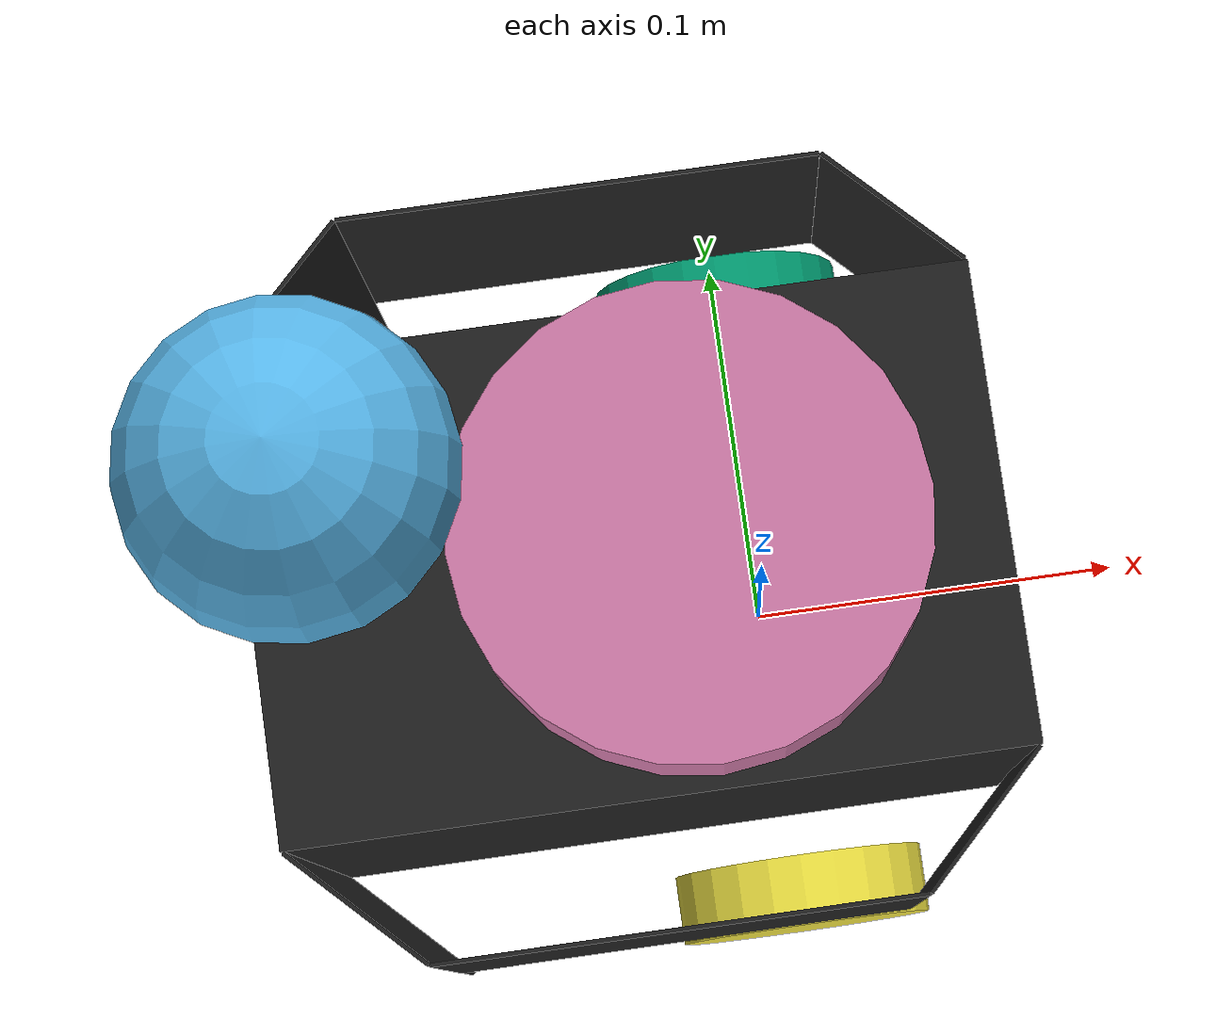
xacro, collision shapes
<?xml version="1.0" ?>
<robot name="turtlebot3_burger" xmlns:xacro="http://ros.org/wiki/xacro">

  <link name="base_footprint"/>

  <joint name="base_joint" type="fixed">
    <parent link="base_footprint"/>
    <child link="base_link"/>
    <origin xyz="0.0 0.0 0.010" rpy="0 0 0"/>
  </joint>

  <link name="base_link">
    <visual>
      <origin xyz="-0.032 0 0.00875" rpy="0 0 0"/>
      <geometry>
        <mesh filename="package://burger_war/models/burger_bot/burger_bot_cover.stl" scale="0.001 0.001 0.001"/>
      </geometry>
      <material name="light_black"/>
    </visual>

    <collision>
      <origin xyz="-0.032 0 0.07875" rpy="0 0 0"/>
      <geometry>
        <box size="0.178 0.116 0.13"/>
      </geometry>
    </collision>
    <collision>
      <origin xyz="-0.032 0.0885 0.10125" rpy="0 0 0"/>
      <geometry>
        <box size="0.116 0.001 0.085"/>
      </geometry>
    </collision>
    <collision>
      <origin xyz="-0.032 -0.0885 0.10125" rpy="0 0 0"/>
      <geometry>
        <box size="0.116 0.001 0.085"/>
      </geometry>
    </collision>
    <collision>
      <origin xyz="-0.10535 0.07335 0.07875" rpy="0 0 0.785398163"/>
      <geometry>
        <box size="0.04243 0.001 0.13"/>
      </geometry>
    </collision>
    <collision>
      <origin xyz="-0.10535 -0.07335 0.07875" rpy="0 0 -0.785398163"/>
      <geometry>
        <box size="0.04243 0.001 0.13"/>
      </geometry>
    </collision>
    <collision>
      <origin xyz="0.04138 0.07335 0.10125" rpy="0 0 -0.785398163"/>
      <geometry>
        <box size="0.04243 0.001 0.085"/>
      </geometry>
    </collision>
    <collision>
      <origin xyz="0.04138 -0.07335 0.10125" rpy="0 0 0.785398163"/>
      <geometry>
        <box size="0.04243 0.001 0.085"/>
      </geometry>
    </collision>

    <inertial>
      <origin xyz="-0.032 0 0.07" rpy="0 0 0"/>
      <mass value="2.6"/>
      <inertia ixx="6.65340e-03" ixy="0" ixz="0"
               iyy="6.65340e-03" iyz="0"
               izz="8.25240e-03" />

    </inertial>
  </link>

  <joint name="wheel_left_joint" type="continuous">
    <parent link="base_link"/>
    <child link="wheel_left_link"/>
    <origin xyz="0.0 0.08 0.023" rpy="-1.57 0 0"/>
    <axis xyz="0 0 1"/>
  </joint>

  <link name="wheel_left_link">
    <visual>
      <origin xyz="0 0 0" rpy="1.57 0 0"/>
      <geometry>
        <mesh filename="package://turtlebot3_description/meshes/wheels/left_tire.stl" scale="0.001 0.001 0.001"/>
      </geometry>
      <material name="dark"/>
    </visual>

    <collision>
      <origin xyz="0 0 0" rpy="0 0 0"/>
      <geometry>
        <cylinder length="0.018" radius="0.033"/>
      </geometry>
    </collision>

    <inertial>
      <origin xyz="0 0 0" />
      <mass value="2.8498940e-02" />
      <inertia ixx="1.1175580e-05" ixy="-4.2369783e-11" ixz="-5.9381719e-09"
               iyy="1.1192413e-05" iyz="-1.4400107e-11"
               izz="2.0712558e-05" />
      </inertial>
  </link>

  <joint name="wheel_right_joint" type="continuous">
    <parent link="base_link"/>
    <child link="wheel_right_link"/>
    <origin xyz="0.0 -0.080 0.023" rpy="-1.57 0 0"/>
    <axis xyz="0 0 1"/>
  </joint>

  <link name="wheel_right_link">
    <visual>
      <origin xyz="0 0 0" rpy="1.57 0 0"/>
      <geometry>
        <mesh filename="package://turtlebot3_description/meshes/wheels/right_tire.stl" scale="0.001 0.001 0.001"/>
      </geometry>
      <material name="dark"/>
    </visual>

    <collision>
      <origin xyz="0 0 0" rpy="0 0 0"/>
      <geometry>
        <cylinder length="0.018" radius="0.033"/>
      </geometry>
    </collision>

    <inertial>
      <origin xyz="0 0 0" />
      <mass value="2.8498940e-02" />
      <inertia ixx="1.1175580e-05" ixy="-4.2369783e-11" ixz="-5.9381719e-09"
               iyy="1.1192413e-05" iyz="-1.4400107e-11"
               izz="2.0712558e-05" />
      </inertial>
  </link>

  <joint name="caster_back_joint" type="fixed">
    <parent link="base_link"/>
    <child link="caster_back_link"/>
    <origin xyz="-0.074 0 0.0025" rpy="0 0 0"/>
  </joint>

  <link name="caster_back_link">
    <visual>
      <geometry>
        <sphere radius="0.0125"/>
      </geometry>
    </visual>
    <collision>
      <origin xyz="0 0 0" rpy="0 0 0"/>
      <geometry>
        <sphere radius="0.0125"/>
      </geometry>
    </collision>

    <inertial>
      <origin xyz="0 0 0" />
      <mass value="0.05" />
      <inertia ixx="0.001" ixy="0.0" ixz="0.0"
               iyy="0.001" iyz="0.0"
               izz="0.001" />
    </inertial>
  </link>

  <joint name="imu_joint" type="fixed">
    <parent link="base_link"/>
    <child link="imu_link"/>
    <origin xyz="-0.032 0 0.068" rpy="0 0 0"/>
  </joint>

  <link name="imu_link"/>

  <joint name="scan_joint" type="fixed">
    <parent link="base_link"/>
    <child link="base_scan"/>
    <origin xyz="-0.032 0 0.16855" rpy="0 0 0"/>
  </joint>

  <link name="base_scan">
    <visual>
      <origin xyz="0 0 0.0" rpy="0 0 0"/>
      <geometry>
        <mesh filename="package://turtlebot3_description/meshes/sensors/lds.stl" scale="0.001 0.001 0.001"/>
      </geometry>
      <material name="dark"/>
    </visual>

    <collision>
      <origin xyz="0.015 0 -0.0065" rpy="0 0 0"/>
      <geometry>
        <cylinder length="0.0315" radius="0.055"/>
      </geometry>
    </collision>

    <inertial>
      <mass value="0.114" />
      <origin xyz="0 0 0" />
      <inertia ixx="0.001" ixy="0.0" ixz="0.0"
               iyy="0.001" iyz="0.0"
               izz="0.001" />
    </inertial>
  </link>

  <joint name="camera_joint" type="fixed">
    <parent link="base_link"/>
    <child link="base_camera"/>
    <origin xyz="0.055 0 0.1" rpy="-1.57 0 -1.57"/>
  </joint>

  <link name="base_camera">
    <visual>
      <origin xyz="0 0 -0.01" rpy="0 0 0"/>
      <geometry>
        <box size="0.03 0.01 0.01"/>
      </geometry>
    </visual>
  </link>

  <gazebo reference="base_camera">
    <material>Gazebo/Grey</material>
  </gazebo>

  <joint name="poll_joint" type="fixed">
    <origin rpy="0 0 0" xyz="-0.09 0.0 0.21"/>
    <parent link="base_link"/>
    <child link="poll"/>
  </joint>S

  <link name="poll">
    <visual>
      <geometry>
        <cylinder length="0.15" radius="0.003"/>
      </geometry>
    </visual>
    <collision>
      <geometry>
        <cylinder length="0.15" radius="0.003"/>
      </geometry>
    </collision>
  </link>

  <joint name="ball_joint" type="fixed">
    <origin rpy="0 0 0" xyz="-0.09 0.0 0.3"/>
    <parent link="base_link"/>
    <child link="ball"/>
  </joint>

  <link name="ball">
    <visual>
      <geometry>
        <sphere radius="0.0325"/>
      </geometry>
    </visual>
    <collision>
      <geometry>
        <sphere radius="0.0325"/>
      </geometry>
    </collision>
  </link>

</robot>
